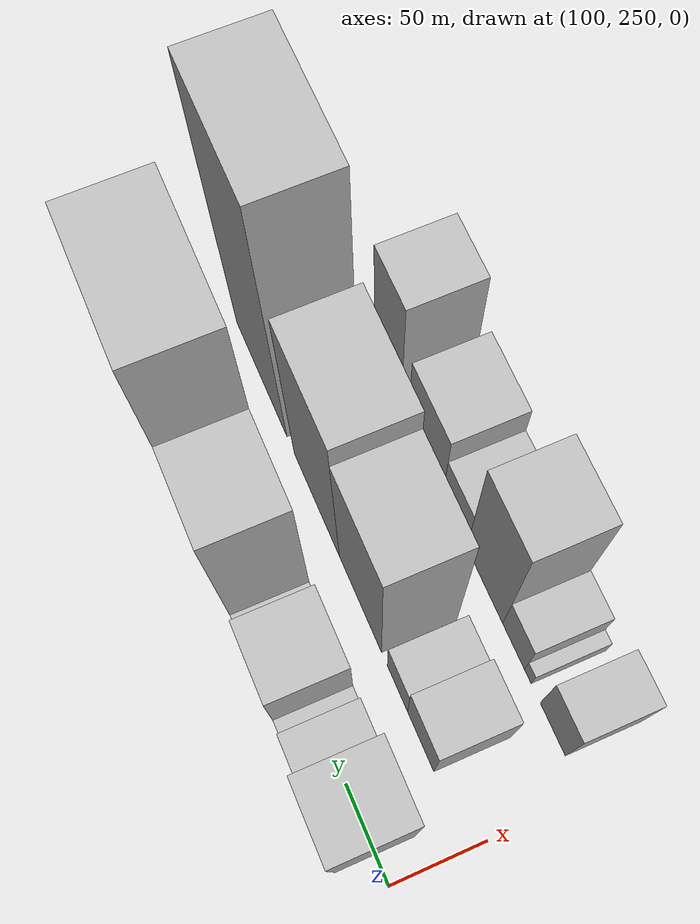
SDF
<sdf version="1.6">
 <world name="default">
  <model name="building_32">
   <static>1</static>
   <pose>100.0000 283.9179 0 0.000000 0.000000 0.000000</pose>
   <link name="link">
    <pose>0 0 57.00 0 0 0</pose>
    <collision name="collision"><geometry><box><size>40.0000 37.4060 114.0000</size></box></geometry></collision>
    <visual name="visual">
     <cast_shadows>0</cast_shadows>
     <geometry><box><size>40.0000 37.4060 114.0000</size></box></geometry>
     <material>
      <script>
       <uri>model://HANNAS_wall/materials/scripts</uri>
       <uri>model://HANNAS_wall/materials/textures</uri>
       <name>vrc/HANNAS_wall</name>
      </script>
     </material>
    </visual>
   </link>
  </model>
  <model name="building_33">
   <static>1</static>
   <pose>100.0000 315.3437 0 0.000000 0.000000 0.000000</pose>
   <link name="link">
    <pose>0 0 22.50 0 0 0</pose>
    <collision name="collision"><geometry><box><size>40.0000 25.4457 45.0000</size></box></geometry></collision>
    <visual name="visual">
     <cast_shadows>0</cast_shadows>
     <geometry><box><size>40.0000 25.4457 45.0000</size></box></geometry>
     <material>
      <script>
       <uri>model://HANNAS_wall/materials/scripts</uri>
       <uri>model://HANNAS_wall/materials/textures</uri>
       <name>vrc/HANNAS_wall</name>
      </script>
     </material>
    </visual>
   </link>
  </model>
  <model name="building_34">
   <static>1</static>
   <pose>100.0000 332.9142 0 0.000000 0.000000 0.000000</pose>
   <link name="link">
    <pose>0 0 10.50 0 0 0</pose>
    <collision name="collision"><geometry><box><size>40.0000 9.6953 21.0000</size></box></geometry></collision>
    <visual name="visual">
     <cast_shadows>0</cast_shadows>
     <geometry><box><size>40.0000 9.6953 21.0000</size></box></geometry>
     <material>
      <script>
       <uri>model://HANNAS_wall/materials/scripts</uri>
       <uri>model://HANNAS_wall/materials/textures</uri>
       <name>vrc/HANNAS_wall</name>
      </script>
     </material>
    </visual>
   </link>
  </model>
  <model name="building_35">
   <static>1</static>
   <pose>100.0000 357.6976 0 0.000000 0.000000 0.000000</pose>
   <link name="link">
    <pose>0 0 34.50 0 0 0</pose>
    <collision name="collision"><geometry><box><size>40.0000 39.8715 69.0000</size></box></geometry></collision>
    <visual name="visual">
     <cast_shadows>0</cast_shadows>
     <geometry><box><size>40.0000 39.8715 69.0000</size></box></geometry>
     <material>
      <script>
       <uri>model://HANNAS_wall/materials/scripts</uri>
       <uri>model://HANNAS_wall/materials/textures</uri>
       <name>vrc/HANNAS_wall</name>
      </script>
     </material>
    </visual>
   </link>
  </model>
  <model name="building_36">
   <static>1</static>
   <pose>100.0000 383.7980 0 0.000000 0.000000 0.000000</pose>
   <link name="link">
    <pose>0 0 13.50 0 0 0</pose>
    <collision name="collision"><geometry><box><size>40.0000 12.3293 27.0000</size></box></geometry></collision>
    <visual name="visual">
     <cast_shadows>0</cast_shadows>
     <geometry><box><size>40.0000 12.3293 27.0000</size></box></geometry>
     <material>
      <script>
       <uri>model://HANNAS_wall/materials/scripts</uri>
       <uri>model://HANNAS_wall/materials/textures</uri>
       <name>vrc/HANNAS_wall</name>
      </script>
     </material>
    </visual>
   </link>
  </model>
  <model name="building_37">
   <static>1</static>
   <pose>100.0000 412.5606 0 0.000000 0.000000 0.000000</pose>
   <link name="link">
    <pose>0 0 70.50 0 0 0</pose>
    <collision name="collision"><geometry><box><size>40.0000 45.1959 141.0000</size></box></geometry></collision>
    <visual name="visual">
     <cast_shadows>0</cast_shadows>
     <geometry><box><size>40.0000 45.1959 141.0000</size></box></geometry>
     <material>
      <script>
       <uri>model://HANNAS_wall/materials/scripts</uri>
       <uri>model://HANNAS_wall/materials/textures</uri>
       <name>vrc/HANNAS_wall</name>
      </script>
     </material>
    </visual>
   </link>
  </model>
  <model name="building_38">
   <static>1</static>
   <pose>100.0000 469.5665 0 0.000000 0.000000 0.000000</pose>
   <link name="link">
    <pose>0 0 106.50 0 0 0</pose>
    <collision name="collision"><geometry><box><size>40.0000 68.8157 213.0000</size></box></geometry></collision>
    <visual name="visual">
     <cast_shadows>0</cast_shadows>
     <geometry><box><size>40.0000 68.8157 213.0000</size></box></geometry>
     <material>
      <script>
       <uri>model://HANNAS_wall/materials/scripts</uri>
       <uri>model://HANNAS_wall/materials/textures</uri>
       <name>vrc/HANNAS_wall</name>
      </script>
     </material>
    </visual>
   </link>
  </model>
  <model name="building_39">
   <static>1</static>
   <pose>100.0000 518.9852 0 0.000000 0.000000 0.000000</pose>
   <link name="link">
    <pose>0 0 27.00 0 0 0</pose>
    <collision name="collision"><geometry><box><size>40.0000 30.0217 54.0000</size></box></geometry></collision>
    <visual name="visual">
     <cast_shadows>0</cast_shadows>
     <geometry><box><size>40.0000 30.0217 54.0000</size></box></geometry>
     <material>
      <script>
       <uri>model://HANNAS_wall/materials/scripts</uri>
       <uri>model://HANNAS_wall/materials/textures</uri>
       <name>vrc/HANNAS_wall</name>
      </script>
     </material>
    </visual>
   </link>
  </model>
  <model name="building_90">
   <static>1</static>
   <pose>160.0000 303.7894 0 0.000000 0.000000 0.000000</pose>
   <link name="link">
    <pose>0 0 27.00 0 0 0</pose>
    <collision name="collision"><geometry><box><size>40.0000 30.5651 54.0000</size></box></geometry></collision>
    <visual name="visual">
     <cast_shadows>0</cast_shadows>
     <geometry><box><size>40.0000 30.5651 54.0000</size></box></geometry>
     <material>
      <script>
       <uri>model://HANNAS_wall/materials/scripts</uri>
       <uri>model://HANNAS_wall/materials/textures</uri>
       <name>vrc/HANNAS_wall</name>
      </script>
     </material>
    </visual>
   </link>
  </model>
  <model name="building_91">
   <static>1</static>
   <pose>160.0000 331.0938 0 0.000000 0.000000 0.000000</pose>
   <link name="link">
    <pose>0 0 21.00 0 0 0</pose>
    <collision name="collision"><geometry><box><size>40.0000 24.0438 42.0000</size></box></geometry></collision>
    <visual name="visual">
     <cast_shadows>0</cast_shadows>
     <geometry><box><size>40.0000 24.0438 42.0000</size></box></geometry>
     <material>
      <script>
       <uri>model://HANNAS_wall/materials/scripts</uri>
       <uri>model://HANNAS_wall/materials/textures</uri>
       <name>vrc/HANNAS_wall</name>
      </script>
     </material>
    </visual>
   </link>
  </model>
  <model name="building_92">
   <static>1</static>
   <pose>160.0000 376.3943 0 0.000000 0.000000 0.000000</pose>
   <link name="link">
    <pose>0 0 67.50 0 0 0</pose>
    <collision name="collision"><geometry><box><size>40.0000 52.5571 135.0000</size></box></geometry></collision>
    <visual name="visual">
     <cast_shadows>0</cast_shadows>
     <geometry><box><size>40.0000 52.5571 135.0000</size></box></geometry>
     <material>
      <script>
       <uri>model://HANNAS_wall/materials/scripts</uri>
       <uri>model://HANNAS_wall/materials/textures</uri>
       <name>vrc/HANNAS_wall</name>
      </script>
     </material>
    </visual>
   </link>
  </model>
  <model name="building_93">
   <static>1</static>
   <pose>160.0000 432.2911 0 0.000000 0.000000 0.000000</pose>
   <link name="link">
    <pose>0 0 76.50 0 0 0</pose>
    <collision name="collision"><geometry><box><size>40.0000 59.2366 153.0000</size></box></geometry></collision>
    <visual name="visual">
     <cast_shadows>0</cast_shadows>
     <geometry><box><size>40.0000 59.2366 153.0000</size></box></geometry>
     <material>
      <script>
       <uri>model://HANNAS_wall/materials/scripts</uri>
       <uri>model://HANNAS_wall/materials/textures</uri>
       <name>vrc/HANNAS_wall</name>
      </script>
     </material>
    </visual>
   </link>
  </model>
  <model name="building_94">
   <static>1</static>
   <pose>160.0000 507.0494 0 0.000000 0.000000 0.000000</pose>
   <link name="link">
    <pose>0 0 109.50 0 0 0</pose>
    <collision name="collision"><geometry><box><size>40.0000 70.2800 219.0000</size></box></geometry></collision>
    <visual name="visual">
     <cast_shadows>0</cast_shadows>
     <geometry><box><size>40.0000 70.2800 219.0000</size></box></geometry>
     <material>
      <script>
       <uri>model://HANNAS_wall/materials/scripts</uri>
       <uri>model://HANNAS_wall/materials/textures</uri>
       <name>vrc/HANNAS_wall</name>
      </script>
     </material>
    </visual>
   </link>
  </model>
  <model name="building_143">
   <static>1</static>
   <pose>220.0000 284.0526 0 0.000000 0.000000 0.000000</pose>
   <link name="link">
    <pose>0 0 27.00 0 0 0</pose>
    <collision name="collision"><geometry><box><size>40.0000 27.2135 54.0000</size></box></geometry></collision>
    <visual name="visual">
     <cast_shadows>0</cast_shadows>
     <geometry><box><size>40.0000 27.2135 54.0000</size></box></geometry>
     <material>
      <script>
       <uri>model://HANNAS_wall/materials/scripts</uri>
       <uri>model://HANNAS_wall/materials/textures</uri>
       <name>vrc/HANNAS_wall</name>
      </script>
     </material>
    </visual>
   </link>
  </model>
  <model name="building_144">
   <static>1</static>
   <pose>220.0000 311.3979 0 0.000000 0.000000 0.000000</pose>
   <link name="link">
    <pose>0 0 9.00 0 0 0</pose>
    <collision name="collision"><geometry><box><size>40.0000 7.4770 18.0000</size></box></geometry></collision>
    <visual name="visual">
     <cast_shadows>0</cast_shadows>
     <geometry><box><size>40.0000 7.4770 18.0000</size></box></geometry>
     <material>
      <script>
       <uri>model://HANNAS_wall/materials/scripts</uri>
       <uri>model://HANNAS_wall/materials/textures</uri>
       <name>vrc/HANNAS_wall</name>
      </script>
     </material>
    </visual>
   </link>
  </model>
  <model name="building_145">
   <static>1</static>
   <pose>220.0000 327.4587 0 0.000000 0.000000 0.000000</pose>
   <link name="link">
    <pose>0 0 21.00 0 0 0</pose>
    <collision name="collision"><geometry><box><size>40.0000 24.6446 42.0000</size></box></geometry></collision>
    <visual name="visual">
     <cast_shadows>0</cast_shadows>
     <geometry><box><size>40.0000 24.6446 42.0000</size></box></geometry>
     <material>
      <script>
       <uri>model://HANNAS_wall/materials/scripts</uri>
       <uri>model://HANNAS_wall/materials/textures</uri>
       <name>vrc/HANNAS_wall</name>
      </script>
     </material>
    </visual>
   </link>
  </model>
  <model name="building_146">
   <static>1</static>
   <pose>220.0000 360.7979 0 0.000000 0.000000 0.000000</pose>
   <link name="link">
    <pose>0 0 58.50 0 0 0</pose>
    <collision name="collision"><geometry><box><size>40.0000 42.0338 117.0000</size></box></geometry></collision>
    <visual name="visual">
     <cast_shadows>0</cast_shadows>
     <geometry><box><size>40.0000 42.0338 117.0000</size></box></geometry>
     <material>
      <script>
       <uri>model://HANNAS_wall/materials/scripts</uri>
       <uri>model://HANNAS_wall/materials/textures</uri>
       <name>vrc/HANNAS_wall</name>
      </script>
     </material>
    </visual>
   </link>
  </model>
  <model name="building_147">
   <static>1</static>
   <pose>220.0000 396.4322 0 0.000000 0.000000 0.000000</pose>
   <link name="link">
    <pose>0 0 25.50 0 0 0</pose>
    <collision name="collision"><geometry><box><size>40.0000 29.2347 51.0000</size></box></geometry></collision>
    <visual name="visual">
     <cast_shadows>0</cast_shadows>
     <geometry><box><size>40.0000 29.2347 51.0000</size></box></geometry>
     <material>
      <script>
       <uri>model://HANNAS_wall/materials/scripts</uri>
       <uri>model://HANNAS_wall/materials/textures</uri>
       <name>vrc/HANNAS_wall</name>
      </script>
     </material>
    </visual>
   </link>
  </model>
  <model name="building_148">
   <static>1</static>
   <pose>220.0000 432.4917 0 0.000000 0.000000 0.000000</pose>
   <link name="link">
    <pose>0 0 37.50 0 0 0</pose>
    <collision name="collision"><geometry><box><size>40.0000 42.8841 75.0000</size></box></geometry></collision>
    <visual name="visual">
     <cast_shadows>0</cast_shadows>
     <geometry><box><size>40.0000 42.8841 75.0000</size></box></geometry>
     <material>
      <script>
       <uri>model://HANNAS_wall/materials/scripts</uri>
       <uri>model://HANNAS_wall/materials/textures</uri>
       <name>vrc/HANNAS_wall</name>
      </script>
     </material>
    </visual>
   </link>
  </model>
  <model name="building_149">
   <static>1</static>
   <pose>220.0000 480.2082 0 0.000000 0.000000 0.000000</pose>
   <link name="link">
    <pose>0 0 55.50 0 0 0</pose>
    <collision name="collision"><geometry><box><size>40.0000 34.5490 111.0000</size></box></geometry></collision>
    <visual name="visual">
     <cast_shadows>0</cast_shadows>
     <geometry><box><size>40.0000 34.5490 111.0000</size></box></geometry>
     <material>
      <script>
       <uri>model://HANNAS_wall/materials/scripts</uri>
       <uri>model://HANNAS_wall/materials/textures</uri>
       <name>vrc/HANNAS_wall</name>
      </script>
     </material>
    </visual>
   </link>
  </model>
 </world>
</sdf>
